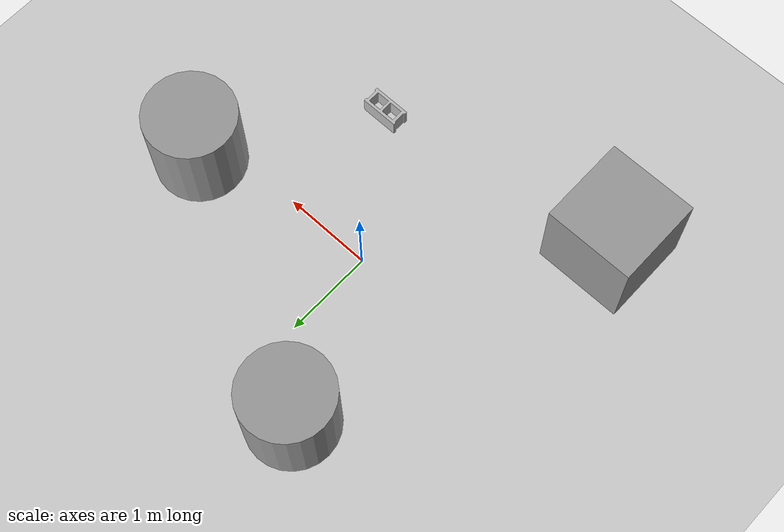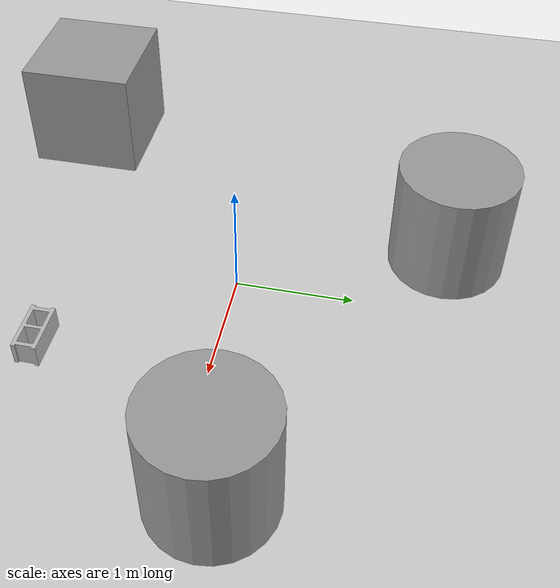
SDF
<sdf version="1.7">
 <world name="default">
  <light name="sun" type="directional">
   <pose>0 0 10 0 -0 0</pose>
   <diffuse>0.8 0.8 0.8 1</diffuse>
   <specular>0.2 0.2 0.2 1</specular>
   <attenuation>
    <range>1000</range>
    <constant>0.9</constant>
    <linear>0.01</linear>
    <quadratic>0.001</quadratic>
   </attenuation>
   <direction>-0.5 0.1 -0.9</direction>
   <spot><inner_angle>0</inner_angle><outer_angle>0</outer_angle><falloff>0</falloff></spot>
  </light>
  <model name="ground_plane">
   <static>1</static>
   <link name="link">
    <collision name="collision">
     <geometry><plane><normal>0 0 1</normal><size>100 100</size></plane></geometry>
     <surface>
      <contact><collide_bitmask>65535</collide_bitmask></contact>
      <friction><ode><mu>100</mu><mu2>50</mu2></ode></friction>
     </surface>
    </collision>
    <visual name="visual">
     <cast_shadows>0</cast_shadows>
     <geometry><plane><normal>0 0 1</normal><size>100 100</size></plane></geometry>
     <material>
      <script><uri>file://media/materials/scripts/gazebo.material</uri><name>Gazebo/Grey</name></script>
     </material>
    </visual>
   </link>
  </model>
  <gravity>0 0 -9.8</gravity>
  <magnetic_field>6e-06 2.3e-05 -4.2e-05</magnetic_field>
  <atmosphere type="adiabatic"/>
  <physics type="ode">
   <max_step_size>0.001</max_step_size>
   <real_time_factor>1</real_time_factor>
   <real_time_update_rate>1000</real_time_update_rate>
  </physics>
  <scene><ambient>0.4 0.4 0.4 1</ambient><background>0.7 0.7 0.7 1</background><shadows>1</shadows></scene>
  <spherical_coordinates>
   <surface_model>EARTH_WGS84</surface_model>
   <latitude_deg>0</latitude_deg>
   <longitude_deg>0</longitude_deg>
   <elevation>0</elevation>
   <heading_deg>0</heading_deg>
  </spherical_coordinates>
  <model name="unit_box">
   <pose>-1.79226 -1.8139 0.499995 -1e-05 -0 -0</pose>
   <link name="link">
    <inertial>
     <mass>1</mass>
     <inertia>
      <ixx>0.166667</ixx>
      <ixy>0</ixy>
      <ixz>0</ixz>
      <iyy>0.166667</iyy>
      <iyz>0</iyz>
      <izz>0.166667</izz>
     </inertia>
    </inertial>
    <collision name="collision"><geometry><box><size>1 1 1</size></box></geometry></collision>
    <visual name="visual">
     <geometry><box><size>1 1 1</size></box></geometry>
     <material>
      <script><name>Gazebo/Grey</name><uri>file://media/materials/scripts/gazebo.material</uri></script>
     </material>
    </visual>
   </link>
  </model>
  <model name="unit_cylinder">
   <pose>2.06353 0.302231 0.499997 3e-06 4e-06 -0</pose>
   <link name="link">
    <inertial>
     <mass>1</mass>
     <inertia><ixx>0.145833</ixx><ixy>0</ixy><ixz>0</ixz><iyy>0.145833</iyy><iyz>0</iyz><izz>0.125</izz></inertia>
    </inertial>
    <collision name="collision">
     <geometry><cylinder><radius>0.5</radius><length>1</length></cylinder></geometry>
    </collision>
    <visual name="visual">
     <geometry><cylinder><radius>0.5</radius><length>1</length></cylinder></geometry>
     <material>
      <script><name>Gazebo/Grey</name><uri>file://media/materials/scripts/gazebo.material</uri></script>
     </material>
    </visual>
   </link>
  </model>
  <model name="unit_cylinder_0">
   <pose>-0.681223 1.71839 0.499993 -3e-06 -4e-06 -0</pose>
   <link name="link">
    <inertial>
     <mass>1</mass>
     <inertia><ixx>0.145833</ixx><ixy>0</ixy><ixz>0</ixz><iyy>0.145833</iyy><iyz>0</iyz><izz>0.125</izz></inertia>
    </inertial>
    <collision name="collision">
     <geometry><cylinder><radius>0.5</radius><length>1</length></cylinder></geometry>
    </collision>
    <visual name="visual">
     <geometry><cylinder><radius>0.5</radius><length>1</length></cylinder></geometry>
     <material>
      <script><name>Gazebo/Grey</name><uri>file://media/materials/scripts/gazebo.material</uri></script>
     </material>
    </visual>
   </link>
  </model>
  <model name="cinder_block">
   <link name="link">
    <inertial>
     <pose>0 0 0.1016 0 -0 0</pose>
     <mass>5</mass>
     <inertia>
      <ixx>0.028705</ixx>
      <ixy>0</ixy>
      <iyy>0.073708</iyy>
      <ixz>0</ixz>
      <iyz>0</iyz>
      <izz>0.06908</izz>
     </inertia>
    </inertial>
    <visual name="visual">
     <geometry><mesh><uri>model://cinder_block/meshes/cinder_block.dae</uri></mesh></geometry>
    </visual>
    <collision name="left">
     <pose>0 -0.08465 0.1016 0 -0 0</pose>
     <geometry><box><size>0.43495 0.0339 0.2032</size></box></geometry>
     <surface>
      <contact><ode><max_vel>0.1</max_vel><min_depth>0.001</min_depth></ode></contact>
      <friction><ode><mu>1</mu><mu2>1</mu2></ode></friction>
     </surface>
    </collision>
    <collision name="right">
     <pose>0 0.08465 0.1016 0 -0 0</pose>
     <geometry><box><size>0.43495 0.0339 0.2032</size></box></geometry>
     <surface>
      <contact><ode><max_vel>0.1</max_vel><min_depth>0.001</min_depth></ode></contact>
      <friction><ode><mu>1</mu><mu2>1</mu2></ode></friction>
     </surface>
    </collision>
    <collision name="front">
     <pose>0.18625 0 0.1016 0 -0 0</pose>
     <geometry><box><size>0.0339 0.1354 0.203</size></box></geometry>
     <surface>
      <contact><ode><max_vel>0.1</max_vel><min_depth>0.001</min_depth></ode></contact>
      <friction><ode><mu>1</mu><mu2>1</mu2></ode></friction>
     </surface>
    </collision>
    <collision name="middle">
     <pose>0 0 0.1016 0 -0 0</pose>
     <geometry><box><size>0.0339 0.1354 0.203</size></box></geometry>
     <surface>
      <contact><ode><max_vel>0.1</max_vel><min_depth>0.001</min_depth></ode></contact>
      <friction><ode><mu>1</mu><mu2>1</mu2></ode></friction>
     </surface>
    </collision>
    <collision name="back">
     <pose>-0.18625 0 0.1016 0 -0 0</pose>
     <geometry><box><size>0.0339 0.1354 0.203</size></box></geometry>
     <surface>
      <contact><ode><max_vel>0.1</max_vel><min_depth>0.001</min_depth></ode></contact>
      <friction><ode><mu>1</mu><mu2>1</mu2></ode></friction>
     </surface>
    </collision>
   </link>
   <pose>0.985775 -1.41399 -6e-06 0 2.8e-05 0</pose>
  </model>
 </world>
</sdf>
